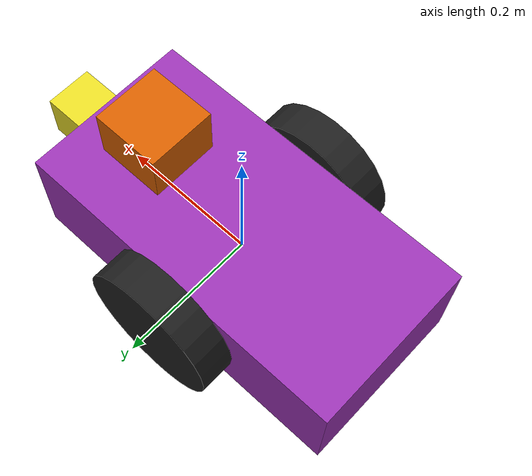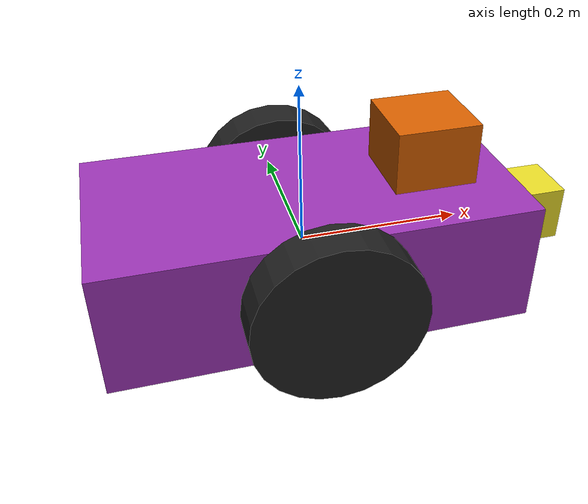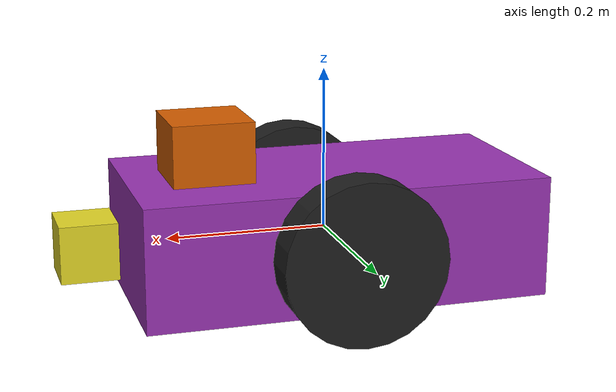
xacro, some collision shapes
<?xml version='1.0'?>

<robot name="my_robot" xmlns:xacro="http://www.ros.org/wiki/xacro">

  <xacro:include filename="$(find my_robot)/urdf/my_robot.gazebo" />

  <link name="robot_footprint"></link>

  <joint name="robot_footprint_joint" type="fixed">
    <origin xyz="0 0 0" rpy="0 0 0" />
    <parent link="robot_footprint"/>
    <child link="chassis" />
  </joint>

  <link name='chassis'>

    <inertial>
      <mass value="12.0"/> <!-- Reduced from 15.0 -->
      <origin xyz="0.0 0 0" rpy=" 0 0 0"/>
      <inertia
          ixx="0.1" ixy="0" ixz="0"
          iyy="0.1" iyz="0"
          izz="0.1"
      />
    </inertial>

    <collision name='collision'>
      <origin xyz="0 0 0" rpy=" 0 0 0"/>
      <geometry>
        <box size="0.5 0.25 0.15"/>
      </geometry>
    </collision>

    <visual name='chassis_visual'>
      <origin xyz="0 0 0" rpy=" 0 0 0"/>
      <geometry>
        <box size="0.5 0.25 0.15"/>
      </geometry>
    </visual>

    <collision name='back_caster_collision'>
      <origin xyz="-0.15 0 -0.05" rpy=" 0 0 0"/>
      <geometry>
        <sphere radius="0.045"/>
      </geometry>
    </collision>

    <visual name='back_caster_visual'>
      <origin xyz="-0.15 0 -0.05" rpy=" 0 0 0"/>
      <geometry>
        <sphere radius="0.045"/>
      </geometry>
    </visual>

    <collision name='front_caster_collision'>
      <origin xyz="0.15 0 -0.05" rpy=" 0 0 0"/>
      <geometry>
        <sphere radius="0.045"/>
      </geometry>
    </collision>

    <visual name='front_caster_visual'>
      <origin xyz="0.15 0 -0.05" rpy=" 0 0 0"/>
      <geometry>
        <sphere radius="0.045"/>
      </geometry>
    </visual>

  </link>

  <link name="left_wheel">
    <collision>
      <origin xyz="0 0 0" rpy="0 1.5707 1.5707"/>
      <geometry>
        <cylinder radius="0.1" length="0.05"/>
      </geometry>
    </collision>

    <inertial>
      <mass value="3.0"/>
      <origin xyz="0 0 0" rpy="0 1.5707 1.5707"/>
      <inertia
          ixx="0.1" ixy="0" ixz="0"
          iyy="0.1" iyz="0"
          izz="0.1"
      />
    </inertial>

    <visual>
      <origin xyz="0 0 0" rpy="0 1.5707 1.5707"/>
      <geometry>
        <cylinder radius="0.1" length="0.05"/>
      </geometry>
    </visual>
  </link>

  <link name="right_wheel">
    <collision>
      <origin xyz="0 0 0" rpy="0 1.5707 1.5707"/>
      <geometry>
        <cylinder radius="0.1" length="0.05"/>
      </geometry>
    </collision>

    <inertial>
      <mass value="3.0"/>
      <origin xyz="0 0 0" rpy="0 1.5707 1.5707"/>
      <inertia
          ixx="0.1" ixy="0" ixz="0"
          iyy="0.1" iyz="0"
          izz="0.1"
      />
    </inertial>

    <visual>
      <origin xyz="0 0 0" rpy="0 1.5707 1.5707"/>
      <geometry>
        <cylinder radius="0.1" length="0.05"/>
      </geometry>
    </visual>
  </link>

  <joint type="continuous" name="left_wheel_hinge">
    <origin xyz="0 0.15 0" rpy="0 0 0"/>
    <child link="left_wheel"/>
    <parent link="chassis"/>
    <axis xyz="0 1 0" rpy="0 0 0"/>
    <limit effort="10000" velocity="1000"/>
    <dynamics damping="1.0" friction="1.0"/>
  </joint>

  <joint type="continuous" name="right_wheel_hinge">
    <origin xyz="0 -0.15 0" rpy="0 0 0"/>
    <child link="right_wheel"/>
    <parent link="chassis"/>
    <axis xyz="0 1 0" rpy="0 0 0"/>
    <limit effort="10000" velocity="1000"/>
    <dynamics damping="1.0" friction="1.0"/>
  </joint>

  <link name="camera">
    <collision>
      <origin xyz="0 0 0" rpy="0 0 0"/>
      <geometry>
        <box size="0.07 0.07 0.07"/>
      </geometry>
    </collision>

    <inertial>
      <mass value="0.05"/>
      <origin xyz="0 0 0" rpy="0 0 0"/>
      <inertia
          ixx="1e-6" ixy="0" ixz="0"
          iyy="1e-6" iyz="0" izz="1e-6"
      />
    </inertial>

    <visual>
      <origin xyz="0 0 0" rpy="0 0 0"/>
      <geometry>
        <box size="0.07 0.07 0.07"/>
      </geometry>
    </visual>
  </link>

  <joint type="fixed" name="camera_joint">
    <origin xyz="0.299 0 0" rpy="0 0 0"/>
    <child link="camera"/>
    <parent link="chassis"/>
    <axis xyz="0 1 0"/>
  </joint>

  <link name="hokuyo">
    <collision>
      <origin xyz="0 0 0" rpy="0 0 0"/>
      <geometry>
        <box size="0.1 0.1 0.1"/>
      </geometry>
    </collision>

    <inertial>
      <mass value="5e-5"/>
      <origin xyz="0 0 0" rpy="0 0 0"/>
      <inertia
          ixx="1e-6" ixy="0" ixz="0"
          iyy="1e-6" iyz="0" izz="1e-6"
      />
    </inertial>

    <visual>
      <origin xyz="0 0 0" rpy="0 0 0"/>
      <geometry>
        <mesh filename="package://my_robot/meshes/hokuyo.dae"/>
      </geometry>
    </visual>
  </link>

  <joint type="fixed" name="hokuyo_joint">
    <origin xyz="0.15 0 0.1" rpy="0 0 0"/>
    <child link="hokuyo"/>
    <parent link="chassis"/>
    <axis xyz="0 1 0"/>
  </joint>

  <gazebo reference="left_wheel">
    <material>
        Gazebo/Black
    </material>
  </gazebo>

  <gazebo reference="right_wheel">
    <material>
        Gazebo/Black
    </material>
  </gazebo>

  <gazebo reference="chassis">
    <material>
        Gazebo/Purple
    </material>
  </gazebo>

  <gazebo reference="camera">
    <material>
        Gazebo/Yellow
    </material>
  </gazebo>

</robot>
